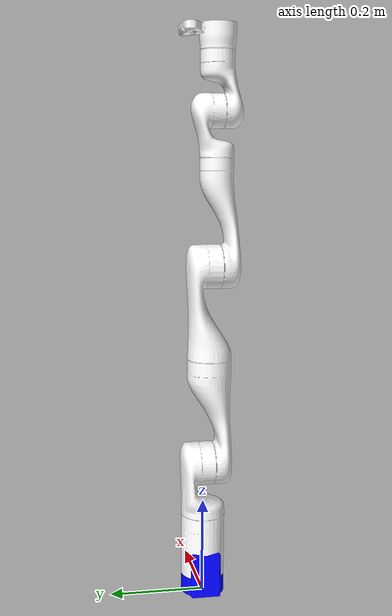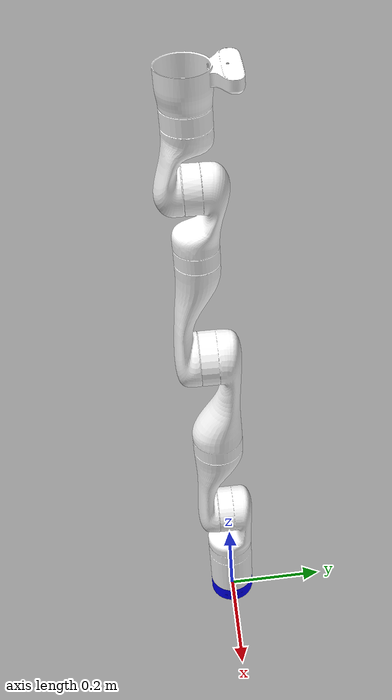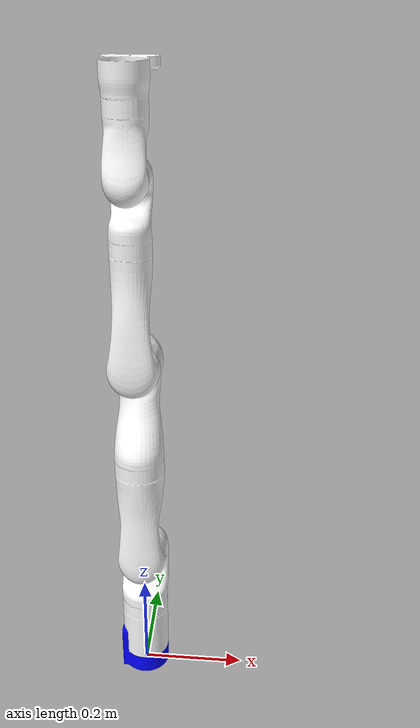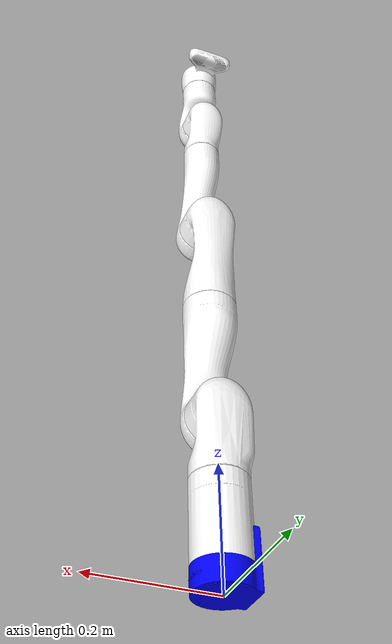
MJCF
<mujoco model="gen3">
  <compiler angle="radian" meshdir="assets"/>

  <option integrator="implicitfast"/>

  <default>
    <!-- kinova defaults -->
    <default class="kinova">
      <material specular="0.5" shininess="0.25"/>
      <joint armature="0.1" damping="1" axis="0 0 1" range="-2.8973 2.8973"/>
      <general dyntype="none" biastype="affine" ctrlrange="-2.8973 2.8973" forcerange="-87 87"/>
      <default class="infiniteJoints">
        <joint limited="false"/>
      </default>
      <default class="limitedJoints">
        <joint limited="true"/>
      </default>
      <site size="0.001" rgba="0.5 0.5 0.5 0.3" group="4"/>

      <default class="visual">
        <geom type="mesh" contype="0" conaffinity="0" group="2"/>
      </default>
      <default class="collision">
        <geom type="mesh" group="3"/>
      </default>
    </default>
  </default>

  <asset>
    <material class="kinova" name="blue" rgba="0.000000 0.000000 1.000000 1.000000"/>
    <material class="kinova" name="white" rgba="1.000000 1.000000 1.000000 1.000000"/>

    <!-- collision meshes -->
    <mesh name="base_link_c" file="base_link.stl"/>
    <mesh name="shoulder_link_c" file="shoulder_link.stl"/>
    <mesh name="half_arm_1_link_c" file="half_arm_1_link.stl"/>
    <mesh name="half_arm_2_link_c" file="half_arm_2_link.stl"/>
    <mesh name="forearm_link_c" file="forearm_link.stl"/>
    <mesh name="spherical_wrist_1_link_c" file="spherical_wrist_1_link.stl"/>
    <mesh name="spherical_wrist_2_link_c" file="spherical_wrist_2_link.stl"/>
    <mesh name="bracelet_with_vision_link_c" file="bracelet_with_vision_link.stl"/>

    <!-- visual meshes -->
    <mesh file="base_link_0.obj"/>
    <mesh file="base_link_1.obj"/>
    <mesh file="shoulder_link.obj"/>
    <mesh file="half_arm_1_link.obj"/>
    <mesh file="half_arm_2_link.obj"/>
    <mesh file="forearm_link.obj"/>
    <mesh file="spherical_wrist_1_link.obj"/>
    <mesh file="spherical_wrist_2_link.obj"/>
    <mesh file="bracelet_with_vision_link.obj"/>
  </asset>

  <contact>
    <exclude body1="base_link" body2="shoulder_link" />
  </contact>

  <worldbody>
    <light name="top" pos="0 0 2" mode="trackcom"/>

    <body name="base_link" gravcomp="1" pos="0 0 0" quat="1 0 0 0">
      <inertial pos="-0.000648 -0.000166 0.084487" quat="1 0 0 0" mass="1.697"
        diaginertia="0.004622 0.004495 0.002079"/>
      <geom mesh="base_link_0" material="blue" class="visual"/>
      <geom mesh="base_link_1" material="white" class="visual"/>
      <geom mesh="base_link_c" class="collision"/>
      <body name="shoulder_link" gravcomp="1" pos="0 0 0.15643" quat="-3.67321e-06 1 0 0">
        <inertial pos="-2.3e-05 -0.010364 -0.07336" quat="0.707051 0.0451246 -0.0453544 0.704263" mass="1.3773"
          diaginertia="0.00488868 0.00457 0.00135132"/>
        <joint class="infiniteJoints" name="joint_1" armature="0.0000015"/>
        <geom mesh="shoulder_link" material="white" class="visual"/>
        <geom mesh="shoulder_link_c" class="collision"/>
        <body name="half_arm_1_link" gravcomp="1" pos="0 0.005375 -0.12838" quat="0.707105 0.707108 0 0">
          <inertial pos="-4.4e-05 -0.09958 -0.013278" quat="0.482348 0.516286 -0.516862 0.483366" mass="1.1636"
            diaginertia="0.0113017 0.011088 0.00102532"/>
          <joint class="limitedJoints" name="joint_2" range="-2.41 2.41" armature="0.0000015"/>
          <geom mesh="half_arm_1_link" material="white" class="visual"/>
          <geom mesh="half_arm_1_link_c" class="collision"/>
          <body name="half_arm_2_link" gravcomp="1" pos="0 -0.21038 -0.006375" quat="0.707105 -0.707108 0 0">
            <inertial pos="-4.4e-05 -0.006641 -0.117892" quat="0.706144 0.0213722 -0.0209128 0.707437" mass="1.1636"
              diaginertia="0.0111633 0.010932 0.00100671"/>
            <joint class="infiniteJoints" name="joint_3" armature="0.0000015"/>
            <geom mesh="half_arm_2_link" material="white" class="visual"/>
            <geom mesh="half_arm_2_link_c" class="collision"/>
            <body name="forearm_link" gravcomp="1" pos="0 0.006375 -0.21038" quat="0.707105 0.707108 0 0">
              <inertial pos="-1.8e-05 -0.075478 -0.015006" quat="0.483678 0.515961 -0.515859 0.483455" mass="0.9302"
                diaginertia="0.00834839 0.008147 0.000598606"/>
              <joint class="limitedJoints" name="joint_4" range="-2.66 2.66" armature="0.0000015"/>
              <geom mesh="forearm_link" material="white" class="visual"/>
              <geom mesh="forearm_link_c" class="collision"/>
              <body name="spherical_wrist_1_link" gravcomp="1" pos="0 -0.20843 -0.006375" quat="0.707105 -0.707108 0 0">
                <inertial pos="1e-06 -0.009432 -0.063883" quat="0.703558 0.0707492 -0.0707492 0.703558" mass="0.6781"
                  diaginertia="0.00165901 0.001596 0.000346988"/>
                <joint class="infiniteJoints" name="joint_5" armature="0.000001928"/>
                <geom mesh="spherical_wrist_1_link" material="white" class="visual"/>
                <geom mesh="spherical_wrist_1_link_c" class="collision"/>
                <body name="spherical_wrist_2_link" gravcomp="1" pos="0 0.00017505 -0.10593"
                  quat="0.707105 0.707108 0 0">
                  <inertial pos="1e-06 -0.045483 -0.00965" quat="0.44426 0.550121 -0.550121 0.44426" mass="0.6781"
                    diaginertia="0.00170087 0.001641 0.00035013"/>
                  <joint class="limitedJoints" name="joint_6" range="-2.23 2.23" armature="0.000001928"/>
                  <geom mesh="spherical_wrist_2_link" material="white" class="visual"/>
                  <geom mesh="spherical_wrist_2_link_c" class="collision"/>
                  <body name="bracelet_link" gravcomp="1" pos="0 -0.10593 -0.00017505" quat="0.707105 -0.707108 0 0">
                    <camera name="wrist_camera" pos="0.0 -0.056 -0.058" fovy="58" mode="fixed" resolution="640 480"
                      quat="0.0 0.0 0.0 1.0"/>
                    <site name="wrist_camera_optical_frame" pos="0.0 -0.056 -0.058" quat="0.0 0.0 1.0 0.0"/>
                    <inertial pos="-9.3e-05 0.000132 -0.022905" quat="-0.0368025 0.719402 -0.0444884 0.69219"
                      mass="0.364"
                      diaginertia="0.00024027 0.000222769 0.000213961"/>
                    <joint class="infiniteJoints" name="joint_7" armature="0.000001928"/>
                    <geom mesh="bracelet_with_vision_link" material="white" class="visual"/>
                    <geom mesh="bracelet_with_vision_link_c" class="collision"/>
                  </body>
                </body>
              </body>
            </body>
          </body>
        </body>
      </body>
    </body>
  </worldbody>

  <actuator>
    <general class="kinova" name="joint_1" joint="joint_1" gainprm="4500" biasprm="0 -4500 -450"/>
    <general class="kinova" name="joint_2" joint="joint_2" gainprm="4500" biasprm="0 -4500 -450"/>
    <general class="kinova" name="joint_3" joint="joint_3" gainprm="3500" biasprm="0 -3500 -350"/>
    <general class="kinova" name="joint_4" joint="joint_4" gainprm="3500" biasprm="0 -3500 -350"/>
    <general class="kinova" name="joint_5" joint="joint_5" gainprm="2000" biasprm="0 -2000 -200"/>
    <general class="kinova" name="joint_6" joint="joint_6" gainprm="2000" biasprm="0 -2000 -200"/>
    <general class="kinova" name="joint_7" joint="joint_7" gainprm="2000" biasprm="0 -2000 -200"/>
  </actuator>
</mujoco>
